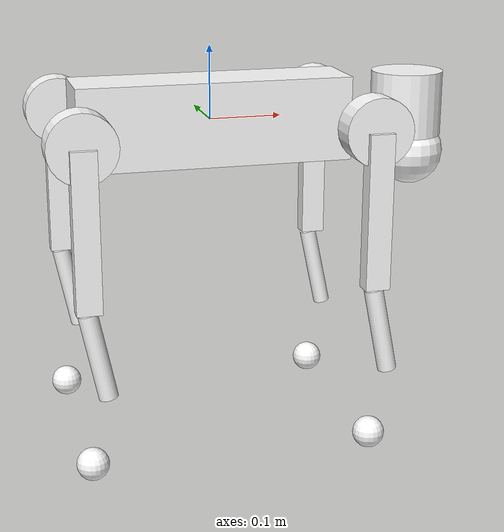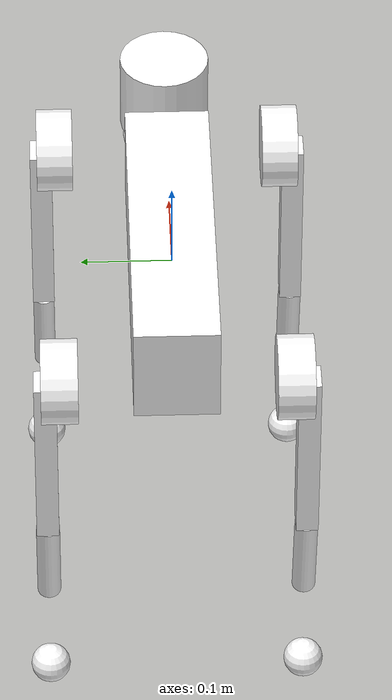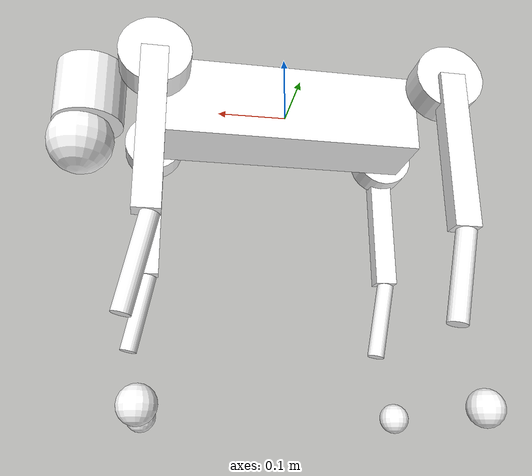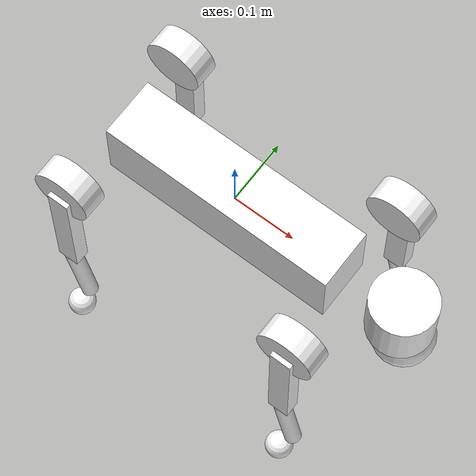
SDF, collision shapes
<sdf version='1.11'>
  <model name='go2_description'>
    <link name='base_link'>
      <inertial>
        <pose>0.021189390726563631 0 -0.0053716721074678611 0 0 0</pose>
        <mass>6.923</mass>
        <inertia>
          <ixx>0.02450242076517968</ixx>
          <ixy>0.00012166</ixy>
          <ixz>0.0014956963870049491</ixz>
          <iyy>0.098242939262173756</iyy>
          <iyz>-3.1199999999999999e-05</iyz>
          <izz>0.1071627184969941</izz>
        </inertia>
      </inertial>
      <collision name='base_link_collision'>
        <pose>0 0 0 0 0 0</pose>
        <geometry>
          <box>
            <size>0.37619999999999998 0.0935 0.114</size>
          </box>
        </geometry>
      </collision>
      <collision name='base_link_fixed_joint_lump__Head_upper_collision_1'>
        <pose>0.28499999999999998 0 0.01 0 0 0</pose>
        <geometry>
          <cylinder>
            <length>0.089999999999999997</length>
            <radius>0.050000000000000003</radius>
          </cylinder>
        </geometry>
      </collision>
      <collision name='base_link_fixed_joint_lump__Head_lower_collision_2'>
        <pose>0.29299999999999998 0 -0.059999999999999998 0 0 0</pose>
        <geometry>
          <sphere>
            <radius>0.047</radius>
          </sphere>
        </geometry>
      </collision>
      <collision name='base_link_fixed_joint_lump__utlidar_lidar_collision_3'>
        <pose>0.28944999999999999 0 -0.046824999999999999 0 0 0</pose>
        <geometry>
          <cylinder>
            <length>0.040000000000000001</length>
            <radius>0.025000000000000001</radius>
          </cylinder>
        </geometry>
        <surface>
          <contact>
            <ode/>
          </contact>
          <friction>
            <ode/>
          </friction>
        </surface>
      </collision>
      <visual name='base_link_visual'>
        <pose>0 0 0 0 0 0</pose>
        <geometry>
          <mesh>
            <scale>1 1 1</scale>
            <uri>model://go2_description/dae/base.dae</uri>
          </mesh>
        </geometry>
        <material>
          <diffuse>1 1 1 1</diffuse>
          <ambient>1 1 1 1</ambient>
        </material>
      </visual>
      <visual name='base_link_fixed_joint_lump__utlidar_lidar_visual_1'>
        <pose>0.28944999999999999 0 -0.046824999999999999 0 0 0</pose>
        <geometry>
          <cylinder>
            <length>0.040000000000000001</length>
            <radius>0.025000000000000001</radius>
          </cylinder>
        </geometry>
        <material>
          <diffuse>0 0 0 1</diffuse>
          <ambient>0 0 0 1</ambient>
        </material>
      </visual>
      <sensor name='imu_sensor' type='imu'>
        <always_on>true</always_on>
        <update_rate>200</update_rate>
        <visualize>true</visualize>
        <topic>imu</topic>
        <imu>
          <angular_velocity>
            <x>
              <noise type='gaussian'>
                <mean>0</mean>
                <stddev>0.01</stddev>
              </noise>
            </x>
            <y>
              <noise type='gaussian'>
                <mean>0</mean>
                <stddev>0.01</stddev>
              </noise>
            </y>
            <z>
              <noise type='gaussian'>
                <mean>0</mean>
                <stddev>0.01</stddev>
              </noise>
            </z>
          </angular_velocity>
          <linear_acceleration>
            <x>
              <noise type='gaussian'>
                <mean>0</mean>
                <stddev>0.1</stddev>
              </noise>
            </x>
            <y>
              <noise type='gaussian'>
                <mean>0</mean>
                <stddev>0.1</stddev>
              </noise>
            </y>
            <z>
              <noise type='gaussian'>
                <mean>0</mean>
                <stddev>0.1</stddev>
              </noise>
            </z>
          </linear_acceleration>
        </imu>
      </sensor>

      <!-- 2D 激光雷达（GZ Sim 用 gpu_lidar 配单线） -->
      <sensor name='lidar_sensor' type='gpu_lidar'>
        <always_on>true</always_on>
        <visualize>true</visualize>
        <update_rate>10</update_rate>
        <topic>scan</topic>
        <lidar>
          <scan>
            <horizontal>
              <samples>360</samples>
              <resolution>1</resolution>
              <min_angle>-3.14159</min_angle>
              <max_angle>3.14159</max_angle>
            </horizontal>
            <vertical>
              <samples>1</samples>  <!-- 单线，2D -->
              <resolution>1</resolution>
              <min_angle>0</min_angle>
              <max_angle>0</max_angle>
            </vertical>
          </scan>
          <range>
            <min>0.1</min>
            <max>30.0</max>
            <resolution>0.01</resolution>
          </range>
        </lidar>
      </sensor>
    </link>
    <joint name='FL_hip_joint' type='revolute'>
      <pose relative_to='base_link'>0.19339999999999999 0.0465 0 0 0 0</pose>
      <parent>base_link</parent>
      <child>FL_hip</child>
      <axis>
        <xyz>1 0 0</xyz>
        <limit>
          <lower>-1.0471999999999999</lower>
          <upper>1.0471999999999999</upper>
          <effort>23.699999999999999</effort>
          <velocity>30.100000000000001</velocity>
        </limit>
        <dynamics>
          <spring_reference>0</spring_reference>
          <spring_stiffness>0</spring_stiffness>
        </dynamics>
      </axis>
      <physics>
        <ode>
          <limit>
            <cfm>0</cfm>
            <erp>0.20000000000000001</erp>
          </limit>
        </ode>
      </physics>
      <dynamics damping='0.1' friction='0.1'/>
    </joint>
    <link name='FL_hip'>
      <pose relative_to='FL_hip_joint'>0 0 0 0 0 0</pose>
      <inertial>
        <pose>-0.0054000000000000003 0.0019400000000000001 -0.000105 0 0 0</pose>
        <mass>0.67800000000000005</mass>
        <inertia>
          <ixx>0.00048000000000000001</ixx>
          <ixy>-3.01e-06</ixy>
          <ixz>1.11e-06</ixz>
          <iyy>0.00088400000000000002</iyy>
          <iyz>-1.42e-06</iyz>
          <izz>0.00059599999999999996</izz>
        </inertia>
      </inertial>
      <collision name='FL_hip_collision'>
        <pose>0 0.080000000000000002 0 1.5707963267948959 0 0</pose>
        <geometry>
          <cylinder>
            <length>0.040000000000000001</length>
            <radius>0.045999999999999999</radius>
          </cylinder>
        </geometry>
      </collision>
      <visual name='FL_hip_visual'>
        <pose>0 0 0 0 0 0</pose>
        <geometry>
          <mesh>
            <scale>1 1 1</scale>
            <uri>model://go2_description/dae/hip.dae</uri>
          </mesh>
        </geometry>
        <material>
          <diffuse>1 1 1 1</diffuse>
          <ambient>1 1 1 1</ambient>
        </material>
      </visual>
    </link>
    <joint name='FL_thigh_joint' type='revolute'>
      <pose relative_to='FL_hip'>0 0.095500000000000002 0 0 0 0</pose>
      <parent>FL_hip</parent>
      <child>FL_thigh</child>
      <axis>
        <xyz>0 1 0</xyz>
        <limit>
          <lower>-1.5708</lower>
          <upper>3.4906999999999999</upper>
          <effort>23.699999999999999</effort>
          <velocity>30.100000000000001</velocity>
        </limit>
        <dynamics>
          <spring_reference>0</spring_reference>
          <spring_stiffness>0</spring_stiffness>
        </dynamics>
      </axis>
      <physics>
        <ode>
          <limit>
            <cfm>0</cfm>
            <erp>0.20000000000000001</erp>
          </limit>
        </ode>
      </physics>
      <dynamics damping='0.1' friction='0.1'/>
    </joint>
    <link name='FL_thigh'>
      <pose relative_to='FL_thigh_joint'>0 0 0 0 0 0</pose>
      <inertial>
        <pose>-0.0037399999999999998 -0.0223 -0.0327 0 0 0</pose>
        <mass>1.1519999999999999</mass>
        <inertia>
          <ixx>0.0058399999999999997</ixx>
          <ixy>8.7200000000000005e-05</ixy>
          <ixz>-0.00028899999999999998</ixz>
          <iyy>0.0057999999999999996</iyy>
          <iyz>0.00080800000000000002</iyz>
          <izz>0.0010300000000000001</izz>
        </inertia>
      </inertial>
      <collision name='FL_thigh_collision'>
        <pose>0 0 -0.1065 0 1.5707963267948966 0</pose>
        <geometry>
          <box>
            <size>0.21299999999999999 0.024500000000000001 0.034000000000000002</size>
          </box>
        </geometry>
      </collision>
      <visual name='FL_thigh_visual'>
        <pose>0 0 0 0 0 0</pose>
        <geometry>
          <mesh>
            <scale>1 1 1</scale>
            <uri>model://go2_description/dae/thigh.dae</uri>
          </mesh>
        </geometry>
        <material>
          <diffuse>1 1 1 1</diffuse>
          <ambient>1 1 1 1</ambient>
        </material>
      </visual>
    </link>
    <joint name='FL_calf_joint' type='revolute'>
      <pose relative_to='FL_thigh'>0 0 -0.21299999999999999 0 0 0</pose>
      <parent>FL_thigh</parent>
      <child>FL_calf</child>
      <axis>
        <xyz>0 1 0</xyz>
        <limit>
          <lower>-2.7227000000000001</lower>
          <upper>-0.83775999999999995</upper>
          <effort>45.43</effort>
          <velocity>15.699999999999999</velocity>
        </limit>
        <dynamics>
          <spring_reference>0</spring_reference>
          <spring_stiffness>0</spring_stiffness>
        </dynamics>
      </axis>
      <physics>
        <ode>
          <limit>
            <cfm>0</cfm>
            <erp>0.20000000000000001</erp>
          </limit>
        </ode>
      </physics>
      <dynamics damping='0.1' friction='0.1'/>
    </joint>
    <link name='FL_calf'>
      <pose relative_to='FL_calf_joint'>0 0 0 0 0 0</pose>
      <inertial>
        <pose>0.0043501030927835041 -0.00077396907216494828 -0.13520618556701031 0 0 0</pose>
        <mass>0.19400000000000001</mass>
        <inertia>
          <ixx>0.001394581937371134</ixx>
          <ixy>5.0965402061855686e-07</ixy>
          <ixz>1.4759587628868399e-07</ixz>
          <iyy>0.001415505295175258</iyy>
          <iyz>1.1313958762886591e-05</iyz>
          <izz>4.3483727391752568e-05</izz>
        </inertia>
      </inertial>
      <collision name='FL_calf_collision'>
        <pose>0.0080000000000000002 0 -0.059999999999999998 0 -0.20999999999999999 0</pose>
        <geometry>
          <cylinder>
            <length>0.12</length>
            <radius>0.012</radius>
          </cylinder>
        </geometry>
      </collision>
      <collision name='FL_calf_fixed_joint_lump__FL_foot_collision_1'>
        <pose>-0.002 0 -0.21299999999999999 0 0 0</pose>
        <geometry>
          <sphere>
            <radius>0.021999999999999999</radius>
          </sphere>
        </geometry>
      </collision>
      <visual name='FL_calf_visual'>
        <pose>0 0 0 0 0 0</pose>
        <geometry>
          <mesh>
            <scale>1 1 1</scale>
            <uri>model://go2_description/dae/calf.dae</uri>
          </mesh>
        </geometry>
        <material>
          <diffuse>1 1 1 1</diffuse>
          <ambient>1 1 1 1</ambient>
        </material>
      </visual>
      <visual name='FL_calf_fixed_joint_lump__FL_foot_visual_1'>
        <pose>0 0 -0.21299999999999999 0 0 0</pose>
        <geometry>
          <mesh>
            <scale>1 1 1</scale>
            <uri>model://go2_description/dae/foot.dae</uri>
          </mesh>
        </geometry>
        <material>
          <diffuse>1 1 1 1</diffuse>
          <ambient>1 1 1 1</ambient>
        </material>
      </visual>
    </link>
    <joint name='FR_hip_joint' type='revolute'>
      <pose relative_to='base_link'>0.19339999999999999 -0.0465 0 0 0 0</pose>
      <parent>base_link</parent>
      <child>FR_hip</child>
      <axis>
        <xyz>1 0 0</xyz>
        <limit>
          <lower>-1.0471999999999999</lower>
          <upper>1.0471999999999999</upper>
          <effort>23.699999999999999</effort>
          <velocity>30.100000000000001</velocity>
        </limit>
        <dynamics>
          <spring_reference>0</spring_reference>
          <spring_stiffness>0</spring_stiffness>
        </dynamics>
      </axis>
      <physics>
        <ode>
          <limit>
            <cfm>0</cfm>
            <erp>0.20000000000000001</erp>
          </limit>
        </ode>
      </physics>
      <dynamics damping='0.1' friction='0.1'/>
    </joint>
    <link name='FR_hip'>
      <pose relative_to='FR_hip_joint'>0 0 0 0 0 0</pose>
      <inertial>
        <pose>-0.0054000000000000003 -0.0019400000000000001 -0.000105 0 0 0</pose>
        <mass>0.67800000000000005</mass>
        <inertia>
          <ixx>0.00048000000000000001</ixx>
          <ixy>3.01e-06</ixy>
          <ixz>1.11e-06</ixz>
          <iyy>0.00088400000000000002</iyy>
          <iyz>1.42e-06</iyz>
          <izz>0.00059599999999999996</izz>
        </inertia>
      </inertial>
      <collision name='FR_hip_collision'>
        <pose>0 -0.080000000000000002 0 1.5707963267948959 0 0</pose>
        <geometry>
          <cylinder>
            <length>0.040000000000000001</length>
            <radius>0.045999999999999999</radius>
          </cylinder>
        </geometry>
      </collision>
      <visual name='FR_hip_visual'>
        <pose>0 0 0 3.1415000000000002 0 0</pose>
        <geometry>
          <mesh>
            <scale>1 1 1</scale>
            <uri>model://go2_description/dae/hip.dae</uri>
          </mesh>
        </geometry>
        <material>
          <diffuse>1 1 1 1</diffuse>
          <ambient>1 1 1 1</ambient>
        </material>
      </visual>
    </link>
    <joint name='FR_thigh_joint' type='revolute'>
      <pose relative_to='FR_hip'>0 -0.095500000000000002 0 0 0 0</pose>
      <parent>FR_hip</parent>
      <child>FR_thigh</child>
      <axis>
        <xyz>0 1 0</xyz>
        <limit>
          <lower>-1.5708</lower>
          <upper>3.4906999999999999</upper>
          <effort>23.699999999999999</effort>
          <velocity>30.100000000000001</velocity>
        </limit>
        <dynamics>
          <spring_reference>0</spring_reference>
          <spring_stiffness>0</spring_stiffness>
        </dynamics>
      </axis>
      <physics>
        <ode>
          <limit>
            <cfm>0</cfm>
            <erp>0.20000000000000001</erp>
          </limit>
        </ode>
      </physics>
      <dynamics damping='0.1' friction='0.1'/>
    </joint>
    <link name='FR_thigh'>
      <pose relative_to='FR_thigh_joint'>0 0 0 0 0 0</pose>
      <inertial>
        <pose>-0.0037399999999999998 0.0223 -0.0327 0 0 0</pose>
        <mass>1.1519999999999999</mass>
        <inertia>
          <ixx>0.0058399999999999997</ixx>
          <ixy>-8.7200000000000005e-05</ixy>
          <ixz>-0.00028899999999999998</ixz>
          <iyy>0.0057999999999999996</iyy>
          <iyz>-0.00080800000000000002</iyz>
          <izz>0.0010300000000000001</izz>
        </inertia>
      </inertial>
      <collision name='FR_thigh_collision'>
        <pose>0 0 -0.1065 0 1.5707963267948966 0</pose>
        <geometry>
          <box>
            <size>0.21299999999999999 0.024500000000000001 0.034000000000000002</size>
          </box>
        </geometry>
      </collision>
      <visual name='FR_thigh_visual'>
        <pose>0 0 0 0 0 0</pose>
        <geometry>
          <mesh>
            <scale>1 1 1</scale>
            <uri>model://go2_description/dae/thigh_mirror.dae</uri>
          </mesh>
        </geometry>
        <material>
          <diffuse>1 1 1 1</diffuse>
          <ambient>1 1 1 1</ambient>
        </material>
      </visual>
    </link>
    <joint name='FR_calf_joint' type='revolute'>
      <pose relative_to='FR_thigh'>0 0 -0.21299999999999999 0 0 0</pose>
      <parent>FR_thigh</parent>
      <child>FR_calf</child>
      <axis>
        <xyz>0 1 0</xyz>
        <limit>
          <lower>-2.7227000000000001</lower>
          <upper>-0.83775999999999995</upper>
          <effort>45.43</effort>
          <velocity>15.699999999999999</velocity>
        </limit>
        <dynamics>
          <spring_reference>0</spring_reference>
          <spring_stiffness>0</spring_stiffness>
        </dynamics>
      </axis>
      <physics>
        <ode>
          <limit>
            <cfm>0</cfm>
            <erp>0.20000000000000001</erp>
          </limit>
        </ode>
      </physics>
      <dynamics damping='0.1' friction='0.1'/>
    </joint>
    <link name='FR_calf'>
      <pose relative_to='FR_calf_joint'>0 0 0 0 0 0</pose>
      <inertial>
        <pose>0.0043501030927835041 0.00077396907216494828 -0.13520618556701031 0 0 0</pose>
        <mass>0.19400000000000001</mass>
        <inertia>
          <ixx>0.001394581937371134</ixx>
          <ixy>-5.0965402061855686e-07</ixy>
          <ixz>1.4759587628868399e-07</ixz>
          <iyy>0.001415505295175258</iyy>
          <iyz>-1.1313958762886591e-05</iyz>
          <izz>4.3483727391752568e-05</izz>
        </inertia>
      </inertial>
      <collision name='FR_calf_collision'>
        <pose>0.01 0 -0.059999999999999998 0 -0.20000000000000004 0</pose>
        <geometry>
          <cylinder>
            <length>0.12</length>
            <radius>0.012999999999999999</radius>
          </cylinder>
        </geometry>
      </collision>
      <collision name='FR_calf_fixed_joint_lump__FR_foot_collision_1'>
        <pose>-0.002 0 -0.21299999999999999 0 0 0</pose>
        <geometry>
          <sphere>
            <radius>0.021999999999999999</radius>
          </sphere>
        </geometry>
      </collision>
      <visual name='FR_calf_visual'>
        <pose>0 0 0 0 0 0</pose>
        <geometry>
          <mesh>
            <scale>1 1 1</scale>
            <uri>model://go2_description/dae/calf_mirror.dae</uri>
          </mesh>
        </geometry>
        <material>
          <diffuse>1 1 1 1</diffuse>
          <ambient>1 1 1 1</ambient>
        </material>
      </visual>
      <visual name='FR_calf_fixed_joint_lump__FR_foot_visual_1'>
        <pose>0 0 -0.21299999999999999 0 0 0</pose>
        <geometry>
          <mesh>
            <scale>1 1 1</scale>
            <uri>model://go2_description/dae/foot.dae</uri>
          </mesh>
        </geometry>
        <material>
          <diffuse>1 1 1 1</diffuse>
          <ambient>1 1 1 1</ambient>
        </material>
      </visual>
    </link>
    <joint name='RL_hip_joint' type='revolute'>
      <pose relative_to='base_link'>-0.19339999999999999 0.0465 0 0 0 0</pose>
      <parent>base_link</parent>
      <child>RL_hip</child>
      <axis>
        <xyz>1 0 0</xyz>
        <limit>
          <lower>-1.0471999999999999</lower>
          <upper>1.0471999999999999</upper>
          <effort>23.699999999999999</effort>
          <velocity>30.100000000000001</velocity>
        </limit>
        <dynamics>
          <spring_reference>0</spring_reference>
          <spring_stiffness>0</spring_stiffness>
        </dynamics>
      </axis>
      <physics>
        <ode>
          <limit>
            <cfm>0</cfm>
            <erp>0.20000000000000001</erp>
          </limit>
        </ode>
      </physics>
      <dynamics damping='0.1' friction='0.1'/>
    </joint>
    <link name='RL_hip'>
      <pose relative_to='RL_hip_joint'>0 0 0 0 0 0</pose>
      <inertial>
        <pose>0.0054000000000000003 0.0019400000000000001 -0.000105 0 0 0</pose>
        <mass>0.67800000000000005</mass>
        <inertia>
          <ixx>0.00048000000000000001</ixx>
          <ixy>3.01e-06</ixy>
          <ixz>-1.11e-06</ixz>
          <iyy>0.00088400000000000002</iyy>
          <iyz>-1.42e-06</iyz>
          <izz>0.00059599999999999996</izz>
        </inertia>
      </inertial>
      <collision name='RL_hip_collision'>
        <pose>0 0.080000000000000002 0 1.5707963267948959 0 0</pose>
        <geometry>
          <cylinder>
            <length>0.040000000000000001</length>
            <radius>0.045999999999999999</radius>
          </cylinder>
        </geometry>
      </collision>
      <visual name='RL_hip_visual'>
        <pose>0 0 0 3.1415926535897931 9.265358979305727e-05 3.1415926535897931</pose>
        <geometry>
          <mesh>
            <scale>1 1 1</scale>
            <uri>model://go2_description/dae/hip.dae</uri>
          </mesh>
        </geometry>
        <material>
          <diffuse>1 1 1 1</diffuse>
          <ambient>1 1 1 1</ambient>
        </material>
      </visual>
    </link>
    <joint name='RL_thigh_joint' type='revolute'>
      <pose relative_to='RL_hip'>0 0.095500000000000002 0 0 0 0</pose>
      <parent>RL_hip</parent>
      <child>RL_thigh</child>
      <axis>
        <xyz>0 1 0</xyz>
        <limit>
          <lower>-0.52359999999999995</lower>
          <upper>4.5378999999999996</upper>
          <effort>23.699999999999999</effort>
          <velocity>30.100000000000001</velocity>
        </limit>
        <dynamics>
          <spring_reference>0</spring_reference>
          <spring_stiffness>0</spring_stiffness>
        </dynamics>
      </axis>
      <physics>
        <ode>
          <limit>
            <cfm>0</cfm>
            <erp>0.20000000000000001</erp>
          </limit>
        </ode>
      </physics>
      <dynamics damping='0.1' friction='0.1'/>
    </joint>
    <link name='RL_thigh'>
      <pose relative_to='RL_thigh_joint'>0 0 0 0 0 0</pose>
      <inertial>
        <pose>-0.0037399999999999998 -0.0223 -0.0327 0 0 0</pose>
        <mass>1.1519999999999999</mass>
        <inertia>
          <ixx>0.0058399999999999997</ixx>
          <ixy>8.7200000000000005e-05</ixy>
          <ixz>-0.00028899999999999998</ixz>
          <iyy>0.0057999999999999996</iyy>
          <iyz>0.00080800000000000002</iyz>
          <izz>0.0010300000000000001</izz>
        </inertia>
      </inertial>
      <collision name='RL_thigh_collision'>
        <pose>0 0 -0.1065 0 1.5707963267948966 0</pose>
        <geometry>
          <box>
            <size>0.21299999999999999 0.024500000000000001 0.034000000000000002</size>
          </box>
        </geometry>
      </collision>
      <visual name='RL_thigh_visual'>
        <pose>0 0 0 0 0 0</pose>
        <geometry>
          <mesh>
            <scale>1 1 1</scale>
            <uri>model://go2_description/dae/thigh.dae</uri>
          </mesh>
        </geometry>
        <material>
          <diffuse>1 1 1 1</diffuse>
          <ambient>1 1 1 1</ambient>
        </material>
      </visual>
    </link>
    <joint name='RL_calf_joint' type='revolute'>
      <pose relative_to='RL_thigh'>0 0 -0.21299999999999999 0 0 0</pose>
      <parent>RL_thigh</parent>
      <child>RL_calf</child>
      <axis>
        <xyz>0 1 0</xyz>
        <limit>
          <lower>-2.7227000000000001</lower>
          <upper>-0.83775999999999995</upper>
          <effort>45.43</effort>
          <velocity>15.699999999999999</velocity>
        </limit>
        <dynamics>
          <spring_reference>0</spring_reference>
          <spring_stiffness>0</spring_stiffness>
        </dynamics>
      </axis>
      <physics>
        <ode>
          <limit>
            <cfm>0</cfm>
            <erp>0.20000000000000001</erp>
          </limit>
        </ode>
      </physics>
      <dynamics damping='0.1' friction='0.1'/>
    </joint>
    <link name='RL_calf'>
      <pose relative_to='RL_calf_joint'>0 0 0 0 0 0</pose>
      <inertial>
        <pose>0.0043501030927835041 -0.00077396907216494828 -0.13520618556701031 0 0 0</pose>
        <mass>0.19400000000000001</mass>
        <inertia>
          <ixx>0.001394581937371134</ixx>
          <ixy>5.0965402061855686e-07</ixy>
          <ixz>1.4759587628868399e-07</ixz>
          <iyy>0.001415505295175258</iyy>
          <iyz>1.1313958762886591e-05</iyz>
          <izz>4.3483727391752568e-05</izz>
        </inertia>
      </inertial>
      <collision name='RL_calf_collision'>
        <pose>0.01 0 -0.059999999999999998 0 -0.20000000000000004 0</pose>
        <geometry>
          <cylinder>
            <length>0.12</length>
            <radius>0.012999999999999999</radius>
          </cylinder>
        </geometry>
      </collision>
      <collision name='RL_calf_fixed_joint_lump__RL_foot_collision_1'>
        <pose>-0.002 0 -0.21299999999999999 0 0 0</pose>
        <geometry>
          <sphere>
            <radius>0.021999999999999999</radius>
          </sphere>
        </geometry>
      </collision>
      <visual name='RL_calf_visual'>
        <pose>0 0 0 0 0 0</pose>
        <geometry>
          <mesh>
            <scale>1 1 1</scale>
            <uri>model://go2_description/dae/calf.dae</uri>
          </mesh>
        </geometry>
        <material>
          <diffuse>1 1 1 1</diffuse>
          <ambient>1 1 1 1</ambient>
        </material>
      </visual>
      <visual name='RL_calf_fixed_joint_lump__RL_foot_visual_1'>
        <pose>0 0 -0.21299999999999999 0 0 0</pose>
        <geometry>
          <mesh>
            <scale>1 1 1</scale>
            <uri>model://go2_description/dae/foot.dae</uri>
          </mesh>
        </geometry>
        <material>
          <diffuse>1 1 1 1</diffuse>
          <ambient>1 1 1 1</ambient>
        </material>
      </visual>
    </link>
    <joint name='RR_hip_joint' type='revolute'>
      <pose relative_to='base_link'>-0.19339999999999999 -0.0465 0 0 0 0</pose>
      <parent>base_link</parent>
      <child>RR_hip</child>
      <axis>
        <xyz>1 0 0</xyz>
        <limit>
          <lower>-1.0471999999999999</lower>
          <upper>1.0471999999999999</upper>
          <effort>23.699999999999999</effort>
          <velocity>30.100000000000001</velocity>
        </limit>
        <dynamics>
          <spring_reference>0</spring_reference>
          <spring_stiffness>0</spring_stiffness>
        </dynamics>
      </axis>
      <physics>
        <ode>
          <limit>
            <cfm>0</cfm>
            <erp>0.20000000000000001</erp>
          </limit>
        </ode>
      </physics>
      <dynamics damping='0.1' friction='0.1'/>
    </joint>
    <link name='RR_hip'>
      <pose relative_to='RR_hip_joint'>0 0 0 0 0 0</pose>
      <inertial>
        <pose>0.0054000000000000003 -0.0019400000000000001 -0.000105 0 0 0</pose>
        <mass>0.67800000000000005</mass>
        <inertia>
          <ixx>0.00048000000000000001</ixx>
          <ixy>-3.01e-06</ixy>
          <ixz>-1.11e-06</ixz>
          <iyy>0.00088400000000000002</iyy>
          <iyz>1.42e-06</iyz>
          <izz>0.00059599999999999996</izz>
        </inertia>
      </inertial>
      <collision name='RR_hip_collision'>
        <pose>0 -0.080000000000000002 0 1.5707963267948959 0 0</pose>
        <geometry>
          <cylinder>
            <length>0.040000000000000001</length>
            <radius>0.045999999999999999</radius>
          </cylinder>
        </geometry>
      </collision>
      <visual name='RR_hip_visual'>
        <pose>0 0 0 -9.2653589793057257e-05 9.2653589793057284e-05 3.1415926535897931</pose>
        <geometry>
          <mesh>
            <scale>1 1 1</scale>
            <uri>model://go2_description/dae/hip.dae</uri>
          </mesh>
        </geometry>
        <material>
          <diffuse>1 1 1 1</diffuse>
          <ambient>1 1 1 1</ambient>
        </material>
      </visual>
    </link>
    <joint name='RR_thigh_joint' type='revolute'>
      <pose relative_to='RR_hip'>0 -0.095500000000000002 0 0 0 0</pose>
      <parent>RR_hip</parent>
      <child>RR_thigh</child>
      <axis>
        <xyz>0 1 0</xyz>
        <limit>
          <lower>-0.52359999999999995</lower>
          <upper>4.5378999999999996</upper>
          <effort>23.699999999999999</effort>
          <velocity>30.100000000000001</velocity>
        </limit>
        <dynamics>
          <spring_reference>0</spring_reference>
          <spring_stiffness>0</spring_stiffness>
        </dynamics>
      </axis>
      <physics>
        <ode>
          <limit>
            <cfm>0</cfm>
            <erp>0.20000000000000001</erp>
          </limit>
        </ode>
      </physics>
      <dynamics damping='0.1' friction='0.1'/>
    </joint>
    <link name='RR_thigh'>
      <pose relative_to='RR_thigh_joint'>0 0 0 0 0 0</pose>
      <inertial>
        <pose>-0.0037399999999999998 0.0223 -0.0327 0 0 0</pose>
        <mass>1.1519999999999999</mass>
        <inertia>
          <ixx>0.0058399999999999997</ixx>
          <ixy>-8.7200000000000005e-05</ixy>
          <ixz>-0.00028899999999999998</ixz>
          <iyy>0.0057999999999999996</iyy>
          <iyz>-0.00080800000000000002</iyz>
          <izz>0.0010300000000000001</izz>
        </inertia>
      </inertial>
      <collision name='RR_thigh_collision'>
        <pose>0 0 -0.1065 0 1.5707963267948966 0</pose>
        <geometry>
          <box>
            <size>0.21299999999999999 0.024500000000000001 0.034000000000000002</size>
          </box>
        </geometry>
      </collision>
      <visual name='RR_thigh_visual'>
        <pose>0 0 0 0 0 0</pose>
        <geometry>
          <mesh>
            <scale>1 1 1</scale>
            <uri>model://go2_description/dae/thigh_mirror.dae</uri>
          </mesh>
        </geometry>
        <material>
          <diffuse>1 1 1 1</diffuse>
          <ambient>1 1 1 1</ambient>
        </material>
      </visual>
    </link>
    <joint name='RR_calf_joint' type='revolute'>
      <pose relative_to='RR_thigh'>0 0 -0.21299999999999999 0 0 0</pose>
      <parent>RR_thigh</parent>
      <child>RR_calf</child>
      <axis>
        <xyz>0 1 0</xyz>
        <limit>
          <lower>-2.7227000000000001</lower>
          <upper>-0.83775999999999995</upper>
          <effort>45.43</effort>
          <velocity>15.699999999999999</velocity>
        </limit>
        <dynamics>
          <spring_reference>0</spring_reference>
          <spring_stiffness>0</spring_stiffness>
        </dynamics>
      </axis>
      <physics>
        <ode>
          <limit>
            <cfm>0</cfm>
            <erp>0.20000000000000001</erp>
          </limit>
        </ode>
      </physics>
      <dynamics damping='0.1' friction='0.1'/>
    </joint>
    <link name='RR_calf'>
      <pose relative_to='RR_calf_joint'>0 0 0 0 0 0</pose>
      <inertial>
        <pose>0.0043501030927835041 0.00077396907216494828 -0.13520618556701031 0 0 0</pose>
        <mass>0.19400000000000001</mass>
        <inertia>
          <ixx>0.001394581937371134</ixx>
          <ixy>-5.0965402061855686e-07</ixy>
          <ixz>1.4759587628868399e-07</ixz>
          <iyy>0.001415505295175258</iyy>
          <iyz>-1.1313958762886591e-05</iyz>
          <izz>4.3483727391752568e-05</izz>
        </inertia>
      </inertial>
      <collision name='RR_calf_collision'>
        <pose>0.01 0 -0.059999999999999998 0 -0.20000000000000004 0</pose>
        <geometry>
          <cylinder>
            <length>0.12</length>
            <radius>0.012999999999999999</radius>
          </cylinder>
        </geometry>
      </collision>
      <collision name='RR_calf_fixed_joint_lump__RR_foot_collision_1'>
        <pose>-0.002 0 -0.21299999999999999 0 0 0</pose>
        <geometry>
          <sphere>
            <radius>0.021999999999999999</radius>
          </sphere>
        </geometry>
      </collision>
      <visual name='RR_calf_visual'>
        <pose>0 0 0 0 0 0</pose>
        <geometry>
          <mesh>
            <scale>1 1 1</scale>
            <uri>model://go2_description/dae/calf_mirror.dae</uri>
          </mesh>
        </geometry>
        <material>
          <diffuse>1 1 1 1</diffuse>
          <ambient>1 1 1 1</ambient>
        </material>
      </visual>
      <visual name='RR_calf_fixed_joint_lump__RR_foot_visual_1'>
        <pose>0 0 -0.21299999999999999 0 0 0</pose>
        <geometry>
          <mesh>
            <scale>1 1 1</scale>
            <uri>model://go2_description/dae/foot.dae</uri>
          </mesh>
        </geometry>
        <material>
          <diffuse>1 1 1 1</diffuse>
          <ambient>1 1 1 1</ambient>
        </material>
      </visual>
    </link>
    <frame name='Head_lower_joint' attached_to='Head_upper'>
      <pose>0.0080000000000000002 0 -0.070000000000000007 0 0 0</pose>
    </frame>
    <frame name='Head_lower' attached_to='Head_lower_joint'>
      <pose>0 0 0 0 0 0</pose>
    </frame>
    <frame name='Head_upper_joint' attached_to='base_link'>
      <pose>0.28499999999999998 0 0.01 0 0 0</pose>
    </frame>
    <frame name='Head_upper' attached_to='Head_upper_joint'>
      <pose>0 0 0 0 0 0</pose>
    </frame>
    <frame name='imu_joint' attached_to='base_link'>
      <pose>-0.025569999999999999 0 0.042320000000000003 0 0 0</pose>
    </frame>
    <frame name='imu' attached_to='imu_joint'>
      <pose>0 0 0 0 0 0</pose>
    </frame>
    <frame name='utlidar_lidar_joint' attached_to='base_link'>
      <pose>0.28944999999999999 0 -0.046824999999999999 0 0 0</pose>
    </frame>
    <frame name='utlidar_lidar' attached_to='utlidar_lidar_joint'>
      <pose>0 0 0 0 0 0</pose>
    </frame>
    <frame name='FL_foot_joint' attached_to='FL_calf'>
      <pose>0 0 -0.21299999999999999 0 0 0</pose>
    </frame>
    <frame name='FL_foot' attached_to='FL_foot_joint'>
      <pose>0 0 0 0 0 0</pose>
    </frame>
    <frame name='FR_foot_joint' attached_to='FR_calf'>
      <pose>0 0 -0.21299999999999999 0 0 0</pose>
    </frame>
    <frame name='FR_foot' attached_to='FR_foot_joint'>
      <pose>0 0 0 0 0 0</pose>
    </frame>
    <frame name='RL_foot_joint' attached_to='RL_calf'>
      <pose>0 0 -0.21299999999999999 0 0 0</pose>
    </frame>
    <frame name='RL_foot' attached_to='RL_foot_joint'>
      <pose>0 0 0 0 0 0</pose>
    </frame>
    <frame name='RR_foot_joint' attached_to='RR_calf'>
      <pose>0 0 -0.21299999999999999 0 0 0</pose>
    </frame>
    <frame name='RR_foot' attached_to='RR_foot_joint'>
      <pose>0 0 0 0 0 0</pose>
    </frame>
  </model>
</sdf>
